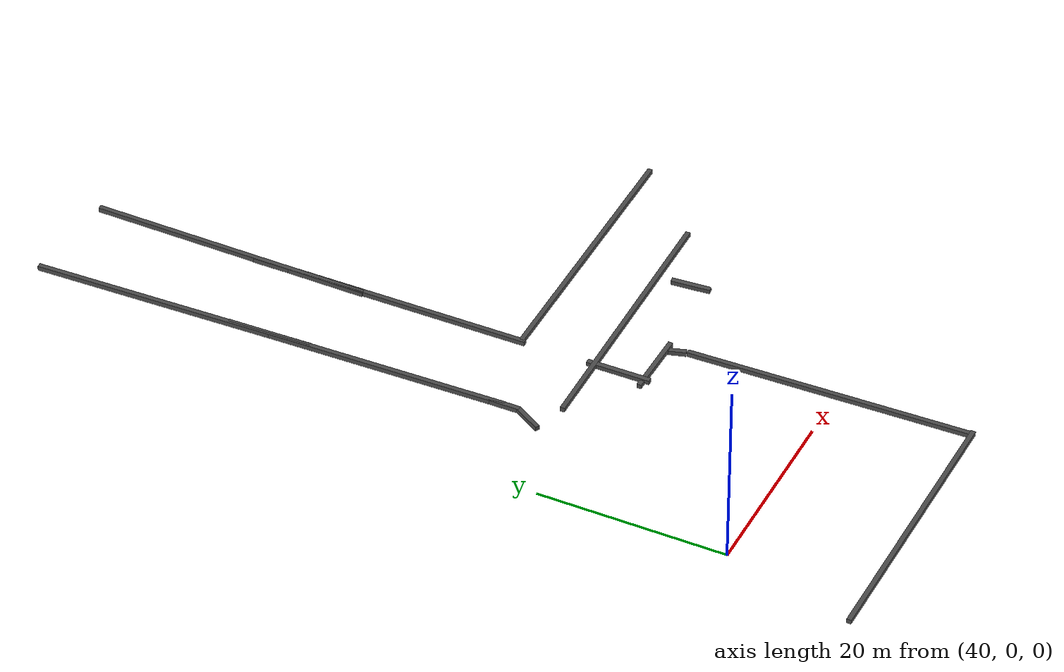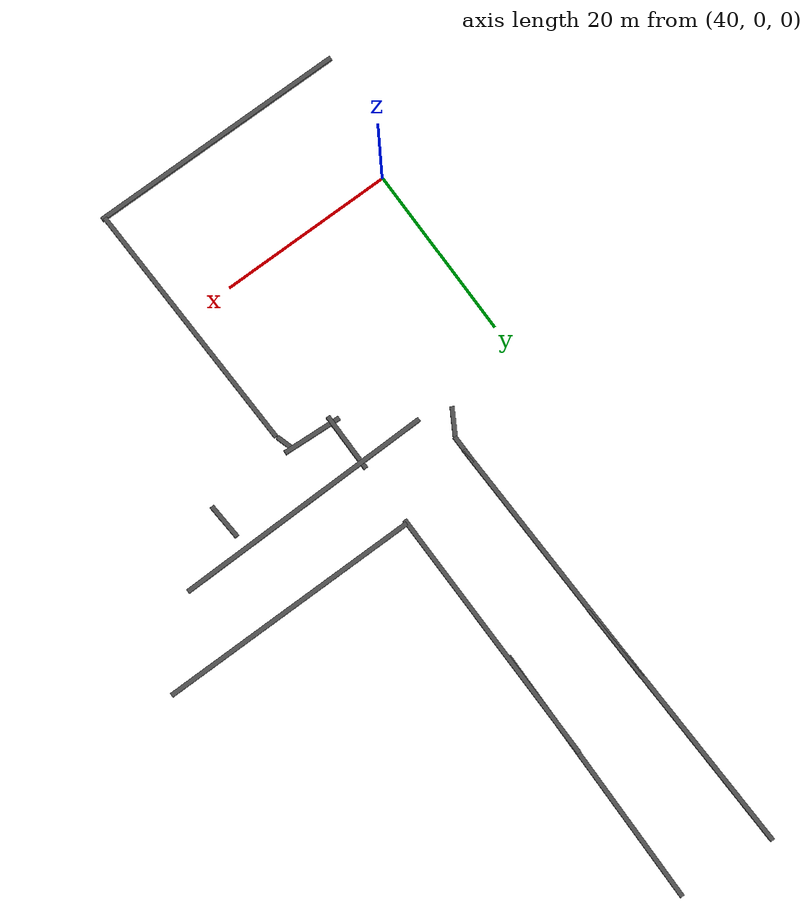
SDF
<sdf version="1.6">
 <world name="default">
  <model name="asphalt_box_clone_10">
   <static>1</static>
   <link name="link">
    <collision name="collision"><geometry><box><size>30 0.5 0.5</size></box></geometry></collision>
    <visual name="visual">
     <cast_shadows>0</cast_shadows>
     <geometry><box><size>30 0.5 0.5</size></box></geometry>
     <material>
      <script>
       <uri>model://asphalt_box/materials/scripts</uri>
       <uri>model://asphalt_box/materials/textures</uri>
       <name>vrc/asphalt</name>
      </script>
     </material>
    </visual>
   </link>
   <pose>65.7833 0.808671 0 0 0 -1.54232</pose>
  </model>
  <model name="asphalt_box_clone_9_clone">
   <static>1</static>
   <link name="link">
    <collision name="collision"><geometry><box><size>30 0.5 0.5</size></box></geometry></collision>
    <visual name="visual">
     <cast_shadows>0</cast_shadows>
     <geometry><box><size>30 0.5 0.5</size></box></geometry>
     <material>
      <script>
       <uri>model://asphalt_box/materials/scripts</uri>
       <uri>model://asphalt_box/materials/textures</uri>
       <name>vrc/asphalt</name>
      </script>
     </material>
    </visual>
   </link>
   <pose>51.5621 -14.0485 0 0 -0 0</pose>
  </model>
  <model name="asphalt_box_clone_10_clone">
   <static>1</static>
   <link name="link">
    <collision name="collision"><geometry><box><size>30 0.5 0.5</size></box></geometry></collision>
    <visual name="visual">
     <cast_shadows>0</cast_shadows>
     <geometry><box><size>30 0.5 0.5</size></box></geometry>
     <material>
      <script>
       <uri>model://asphalt_box/materials/scripts</uri>
       <uri>model://asphalt_box/materials/textures</uri>
       <name>vrc/asphalt</name>
      </script>
     </material>
    </visual>
   </link>
   <pose>49.501 64.5959 0 0 0 -1.54232</pose>
  </model>
  <model name="asphalt_box_clone_10_clone_0">
   <static>1</static>
   <link name="link">
    <collision name="collision"><geometry><box><size>30 0.5 0.5</size></box></geometry></collision>
    <visual name="visual">
     <cast_shadows>0</cast_shadows>
     <geometry><box><size>30 0.5 0.5</size></box></geometry>
     <material>
      <script>
       <uri>model://asphalt_box/materials/scripts</uri>
       <uri>model://asphalt_box/materials/textures</uri>
       <name>vrc/asphalt</name>
      </script>
     </material>
    </visual>
   </link>
   <pose>50.0394 43.5183 0 0 0 -1.54821</pose>
  </model>
  <model name="asphalt_box_clone_10_clone_clone">
   <static>1</static>
   <link name="link">
    <collision name="collision"><geometry><box><size>30 0.5 0.5</size></box></geometry></collision>
    <visual name="visual">
     <cast_shadows>0</cast_shadows>
     <geometry><box><size>30 0.5 0.5</size></box></geometry>
     <material>
      <script>
       <uri>model://asphalt_box/materials/scripts</uri>
       <uri>model://asphalt_box/materials/textures</uri>
       <name>vrc/asphalt</name>
      </script>
     </material>
    </visual>
   </link>
   <pose>59.7039 63.6002 0 0 0 -1.58298</pose>
  </model>
  <model name="asphalt_box_clone_10_clone_clone_clone">
   <static>1</static>
   <link name="link">
    <collision name="collision"><geometry><box><size>30 0.5 0.5</size></box></geometry></collision>
    <visual name="visual">
     <cast_shadows>0</cast_shadows>
     <geometry><box><size>30 0.5 0.5</size></box></geometry>
     <material>
      <script>
       <uri>model://asphalt_box/materials/scripts</uri>
       <uri>model://asphalt_box/materials/textures</uri>
       <name>vrc/asphalt</name>
      </script>
     </material>
    </visual>
   </link>
   <pose>59.673 45.8294 0 0 0 -1.56625</pose>
  </model>
  <model name="asphalt_box_clone_9_clone_clone">
   <static>1</static>
   <link name="link">
    <collision name="collision"><geometry><box><size>30 0.5 0.5</size></box></geometry></collision>
    <visual name="visual">
     <cast_shadows>0</cast_shadows>
     <geometry><box><size>30 0.5 0.5</size></box></geometry>
     <material>
      <script>
       <uri>model://asphalt_box/materials/scripts</uri>
       <uri>model://asphalt_box/materials/textures</uri>
       <name>vrc/asphalt</name>
      </script>
     </material>
    </visual>
   </link>
   <pose>74.7872 31.2463 0 0 -0 0</pose>
  </model>
  <model name="asphalt_box_clone_9_clone_clone_1_clone_clone_0_clone">
   <static>1</static>
   <link name="link">
    <collision name="collision"><geometry><box><size>30.0001 0.5 0.5</size></box></geometry></collision>
    <visual name="visual">
     <cast_shadows>0</cast_shadows>
     <geometry><box><size>30.0001 0.5 0.5</size></box></geometry>
     <material>
      <script>
       <uri>model://asphalt_box/materials/scripts</uri>
       <uri>model://asphalt_box/materials/textures</uri>
       <name>vrc/asphalt</name>
      </script>
     </material>
    </visual>
   </link>
   <pose>67.2328 23.3572 0 0 -0 0.012015</pose>
  </model>
  <model name="asphalt_box_clone_10_clone_1_clone_1_clone_1_clone_clone_1_clone_clone_clone_clone_clone_clone_clone_0_clone_clone_0_clone_clone_clone">
   <static>1</static>
   <link name="link">
    <collision name="collision"><geometry><box><size>4.13253 0.5 0.5</size></box></geometry></collision>
    <visual name="visual">
     <cast_shadows>0</cast_shadows>
     <geometry><box><size>4.13253 0.5 0.5</size></box></geometry>
     <material>
      <script>
       <uri>model://asphalt_box/materials/scripts</uri>
       <uri>model://asphalt_box/materials/textures</uri>
       <name>vrc/asphalt</name>
      </script>
     </material>
    </visual>
   </link>
   <pose>74.9142 19.8516 0 0.061948 -0.013798 -1.50471</pose>
  </model>
  <model name="asphalt_box_clone_10_clone_1_clone_1_clone_1_clone_clone_1_clone_clone_clone_clone_clone_clone_clone_0_clone_clone_0_clone_clone_clone_clone">
   <static>1</static>
   <link name="link">
    <collision name="collision"><geometry><box><size>6.76726 0.5 0.5</size></box></geometry></collision>
    <visual name="visual">
     <cast_shadows>0</cast_shadows>
     <geometry><box><size>6.76726 0.5 0.5</size></box></geometry>
     <material>
      <script>
       <uri>model://asphalt_box/materials/scripts</uri>
       <uri>model://asphalt_box/materials/textures</uri>
       <name>vrc/asphalt</name>
      </script>
     </material>
    </visual>
   </link>
   <pose>59.7736 20.6735 0 0.06275 -0.009499 -1.57355</pose>
  </model>
  <model name="asphalt_box_clone_10_clone_1_clone_1_clone_1_clone_clone_1_clone_clone_clone_clone_clone_clone_clone_0_clone_clone_0_clone_clone_clone_clone_0">
   <static>1</static>
   <link name="link">
    <collision name="collision"><geometry><box><size>6.76725 0.5 0.5</size></box></geometry></collision>
    <visual name="visual">
     <cast_shadows>0</cast_shadows>
     <geometry><box><size>6.76725 0.5 0.5</size></box></geometry>
     <material>
      <script>
       <uri>model://asphalt_box/materials/scripts</uri>
       <uri>model://asphalt_box/materials/textures</uri>
       <name>vrc/asphalt</name>
      </script>
     </material>
    </visual>
   </link>
   <pose>62.2557 17.9132 0 -0.006846 -0.063094 -0.044641</pose>
  </model>
  <model name="asphalt_box_clone_10_clone_1_clone_1_clone_1_clone_clone_1_clone_clone_clone_clone_clone_clone_clone_0_clone_clone_0_clone_1">
   <static>1</static>
   <link name="link">
    <collision name="collision"><geometry><box><size>1.96342 0.5 0.5</size></box></geometry></collision>
    <visual name="visual">
     <cast_shadows>0</cast_shadows>
     <geometry><box><size>1.96342 0.5 0.5</size></box></geometry>
     <material>
      <script>
       <uri>model://asphalt_box/materials/scripts</uri>
       <uri>model://asphalt_box/materials/textures</uri>
       <name>vrc/asphalt</name>
      </script>
     </material>
    </visual>
   </link>
   <pose>64.9898 16.8481 0 0 0 -1.27603</pose>
  </model>
  <model name="asphalt_box_clone_10_clone_1_clone_1_clone_1_clone_clone_1_clone_clone_clone_clone_clone_clone_clone_0_clone_clone_0_clone_1_clone_clone_0_clone_clone_1">
   <static>1</static>
   <link name="link">
    <collision name="collision"><geometry><box><size>3.31209 0.5 0.5</size></box></geometry></collision>
    <visual name="visual">
     <cast_shadows>0</cast_shadows>
     <geometry><box><size>3.31209 0.5 0.5</size></box></geometry>
     <material>
      <script>
       <uri>model://asphalt_box/materials/scripts</uri>
       <uri>model://asphalt_box/materials/textures</uri>
       <name>vrc/asphalt</name>
      </script>
     </material>
    </visual>
   </link>
   <pose>49.5013 25.5526 0 0 0 -2.10139</pose>
  </model>
  <model name="asphalt_box_clone_10_clone_1_clone_1_clone_1_clone_clone_1_clone_clone_clone_clone_clone_clone_clone_0_clone_clone_0_clone_1_clone_clone_0_clone_clone_1_clone">
   <static>1</static>
   <link name="link">
    <collision name="collision"><geometry><box><size>3.31209 0.5 0.5</size></box></geometry></collision>
    <visual name="visual">
     <cast_shadows>0</cast_shadows>
     <geometry><box><size>3.31209 0.5 0.5</size></box></geometry>
     <material>
      <script>
       <uri>model://asphalt_box/materials/scripts</uri>
       <uri>model://asphalt_box/materials/textures</uri>
       <name>vrc/asphalt</name>
      </script>
     </material>
    </visual>
   </link>
   <pose>50.3483 28.5475 0 0 0 -1.56767</pose>
  </model>
 </world>
</sdf>
